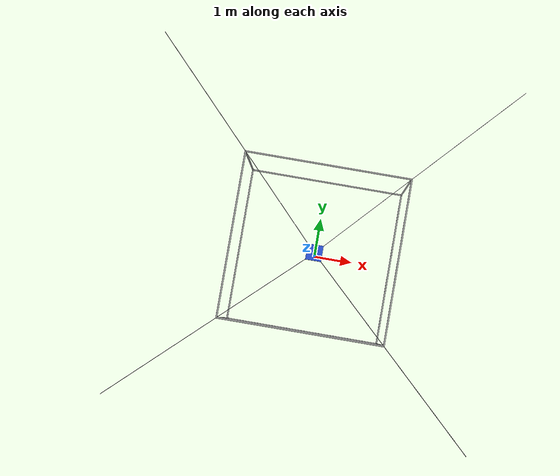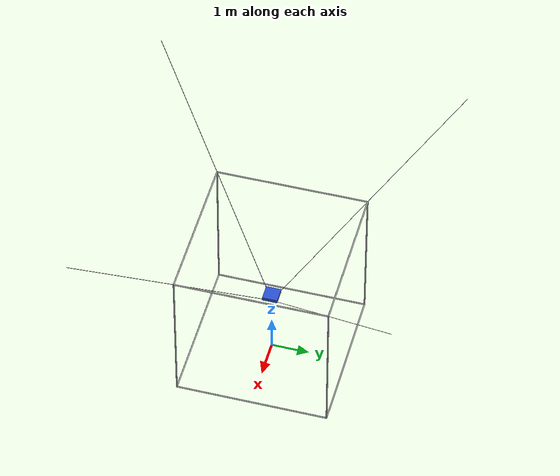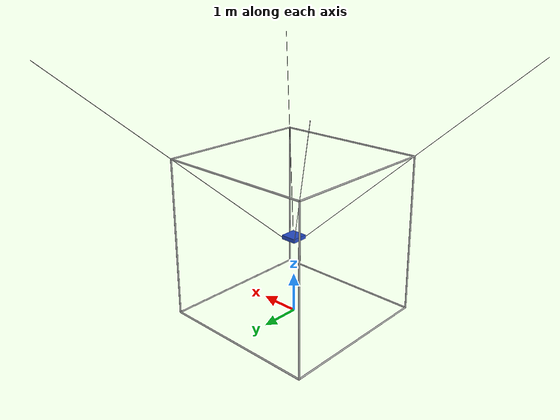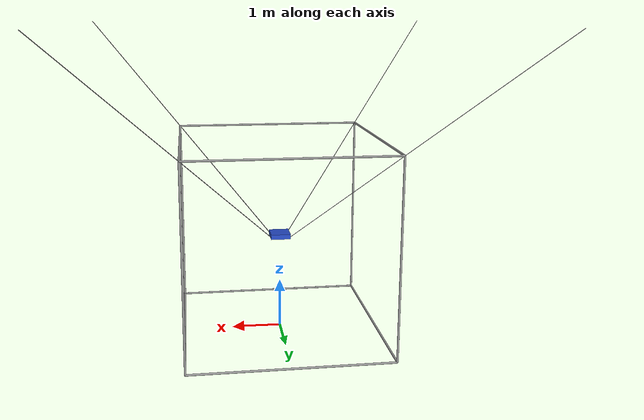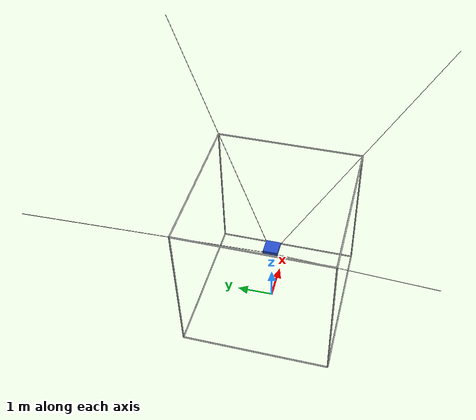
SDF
<sdf version='1.7'>
  <model name='cube'>
    <link name='frame'>
      <pose>0 0 0 0 -0 0</pose>
      <inertial>
        <inertia>
          <ixx>100000</ixx>
          <iyy>100000</iyy>
          <izz>100000</izz>
          <ixy>0</ixy>
          <ixz>0</ixz>
          <iyz>0</iyz>
        </inertia>
        <mass>100000</mass>
      </inertial>
      <visual name='visual1'>
        <geometry>
          <cylinder>
            <radius>0.02</radius>
            <length>4</length>
          </cylinder>
        </geometry>
        <pose>-2 -2 2 0 -0 0</pose>
        <material>
          <script>
            <uri>file://media/materials/scripts/gazebo.material</uri>
            <name>Gazebo/Grey</name>
          </script>
        </material>
      </visual>
      <collision name='collision1'>
        <geometry>
          <cylinder>
            <radius>0.02</radius>
            <length>1</length>
          </cylinder>
        </geometry>
        <pose>-2 -2 2 0 -0 0</pose>
      </collision>
      <visual name='visual2'>
        <geometry>
          <cylinder>
            <radius>0.02</radius>
            <length>4</length>
          </cylinder>
        </geometry>
        <pose>-2 0 0 1.5708 -0 0</pose>
        <material>
          <script>
            <uri>file://media/materials/scripts/gazebo.material</uri>
            <name>Gazebo/Grey</name>
          </script>
        </material>
      </visual>
      <collision name='collision2'>
        <geometry>
          <cylinder>
            <radius>0.02</radius>
            <length>1</length>
          </cylinder>
        </geometry>
        <pose>-2 0 0 1.5708 -0 0</pose>
      </collision>
      <visual name='visual3'>
        <geometry>
          <cylinder>
            <radius>0.02</radius>
            <length>4</length>
          </cylinder>
        </geometry>
        <pose>0 -2 0 0 1.5708 0</pose>
        <material>
          <script>
            <uri>file://media/materials/scripts/gazebo.material</uri>
            <name>Gazebo/Grey</name>
          </script>
        </material>
      </visual>
      <collision name='collision3'>
        <geometry>
          <cylinder>
            <radius>0.02</radius>
            <length>1</length>
          </cylinder>
        </geometry>
        <pose>0 -2 0 0 1.5708 0</pose>
      </collision>
      <visual name='visual4'>
        <geometry>
          <cylinder>
            <radius>0.02</radius>
            <length>4</length>
          </cylinder>
        </geometry>
        <pose>-2 0 4 1.5708 -0 0</pose>
        <material>
          <script>
            <uri>file://media/materials/scripts/gazebo.material</uri>
            <name>Gazebo/Grey</name>
          </script>
        </material>
      </visual>
      <collision name='collision4'>
        <geometry>
          <cylinder>
            <radius>0.02</radius>
            <length>1</length>
          </cylinder>
        </geometry>
        <pose>-2 0 4 1.5708 -0 0</pose>
      </collision>
      <visual name='visual5'>
        <geometry>
          <cylinder>
            <radius>0.02</radius>
            <length>4</length>
          </cylinder>
        </geometry>
        <pose>0 -2 4 0 1.5708 0</pose>
        <material>
          <script>
            <uri>file://media/materials/scripts/gazebo.material</uri>
            <name>Gazebo/Grey</name>
          </script>
        </material>
      </visual>
      <collision name='collision5'>
        <geometry>
          <cylinder>
            <radius>0.02</radius>
            <length>1</length>
          </cylinder>
        </geometry>
        <pose>0 -2 4 0 1.5708 0</pose>
      </collision>
      <visual name='visual6'>
        <geometry>
          <cylinder>
            <radius>0.02</radius>
            <length>4</length>
          </cylinder>
        </geometry>
        <pose>-2 2 2 0 -0 0</pose>
        <material>
          <script>
            <uri>file://media/materials/scripts/gazebo.material</uri>
            <name>Gazebo/Grey</name>
          </script>
        </material>
      </visual>
      <collision name='collision6'>
        <geometry>
          <cylinder>
            <radius>0.02</radius>
            <length>1</length>
          </cylinder>
        </geometry>
        <pose>-2 2 2 0 -0 0</pose>
      </collision>
      <visual name='visual7'>
        <geometry>
          <cylinder>
            <radius>0.02</radius>
            <length>4</length>
          </cylinder>
        </geometry>
        <pose>0 2 0 0 1.5708 0</pose>
        <material>
          <script>
            <uri>file://media/materials/scripts/gazebo.material</uri>
            <name>Gazebo/Grey</name>
          </script>
        </material>
      </visual>
      <collision name='collision7'>
        <geometry>
          <cylinder>
            <radius>0.02</radius>
            <length>1</length>
          </cylinder>
        </geometry>
        <pose>0 2 0 0 1.5708 0</pose>
      </collision>
      <visual name='visual8'>
        <geometry>
          <cylinder>
            <radius>0.02</radius>
            <length>4</length>
          </cylinder>
        </geometry>
        <pose>0 2 4 0 1.5708 0</pose>
        <material>
          <script>
            <uri>file://media/materials/scripts/gazebo.material</uri>
            <name>Gazebo/Grey</name>
          </script>
        </material>
      </visual>
      <collision name='collision8'>
        <geometry>
          <cylinder>
            <radius>0.02</radius>
            <length>1</length>
          </cylinder>
        </geometry>
        <pose>0 2 4 0 1.5708 0</pose>
      </collision>
      <visual name='visual9'>
        <geometry>
          <cylinder>
            <radius>0.02</radius>
            <length>4</length>
          </cylinder>
        </geometry>
        <pose>2 -2 2 0 -0 0</pose>
        <material>
          <script>
            <uri>file://media/materials/scripts/gazebo.material</uri>
            <name>Gazebo/Grey</name>
          </script>
        </material>
      </visual>
      <collision name='collision9'>
        <geometry>
          <cylinder>
            <radius>0.02</radius>
            <length>1</length>
          </cylinder>
        </geometry>
        <pose>2 -2 2 0 -0 0</pose>
      </collision>
      <visual name='visual10'>
        <geometry>
          <cylinder>
            <radius>0.02</radius>
            <length>4</length>
          </cylinder>
        </geometry>
        <pose>2 0 0 1.5708 -0 0</pose>
        <material>
          <script>
            <uri>file://media/materials/scripts/gazebo.material</uri>
            <name>Gazebo/Grey</name>
          </script>
        </material>
      </visual>
      <collision name='collision10'>
        <geometry>
          <cylinder>
            <radius>0.02</radius>
            <length>1</length>
          </cylinder>
        </geometry>
        <pose>2 0 0 1.5708 -0 0</pose>
      </collision>
      <visual name='visual11'>
        <geometry>
          <cylinder>
            <radius>0.02</radius>
            <length>4</length>
          </cylinder>
        </geometry>
        <pose>2 0 4 1.5708 -0 0</pose>
        <material>
          <script>
            <uri>file://media/materials/scripts/gazebo.material</uri>
            <name>Gazebo/Grey</name>
          </script>
        </material>
      </visual>
      <collision name='collision11'>
        <geometry>
          <cylinder>
            <radius>0.02</radius>
            <length>1</length>
          </cylinder>
        </geometry>
        <pose>2 0 4 1.5708 -0 0</pose>
      </collision>
      <visual name='visual12'>
        <geometry>
          <cylinder>
            <radius>0.02</radius>
            <length>4</length>
          </cylinder>
        </geometry>
        <pose>2 2 2 0 -0 0</pose>
        <material>
          <script>
            <uri>file://media/materials/scripts/gazebo.material</uri>
            <name>Gazebo/Grey</name>
          </script>
        </material>
      </visual>
      <collision name='collision12'>
        <geometry>
          <cylinder>
            <radius>0.02</radius>
            <length>1</length>
          </cylinder>
        </geometry>
        <pose>2 2 2 0 -0 0</pose>
      </collision>
    </link>
    <link name='platform'>
      <pose>0 0 2 0 -0 0</pose>
      <visual name='visualpf'>
        <geometry>
          <box>
            <size>0.4 0.4 0.1</size>
          </box>
        </geometry>
        <material>
          <script>
            <uri>file://media/materials/scripts/gazebo.material</uri>
            <name>Gazebo/Blue</name>
          </script>
        </material>
      </visual>
      <collision name='collisionpf'>
        <geometry>
          <box>
            <size>0.4 0.4 0.1</size>
          </box>
        </geometry>
      </collision>
      <inertial>
        <inertia>
          <ixx>0.057</ixx>
          <iyy>0.057</iyy>
          <izz>0.107</izz>
          <ixy>0</ixy>
          <ixz>0</ixz>
          <iyz>0</iyz>
        </inertia>
        <mass>4</mass>
      </inertial>
    </link>
    <link name='cable0'>
      <pose>-2.12612 -2.12612 4.14013 -2.40878 0.589592 -1.33881</pose>
      <visual name='visual'>
        <geometry>
          <cylinder>
            <radius>0.005</radius>
            <length>6.9282</length>
          </cylinder>
        </geometry>
        <material>
          <script>
            <uri>file://media/materials/scripts/gazebo.material</uri>
            <name>Gazebo/Black</name>
          </script>
        </material>
      </visual>
      <inertial>
        <inertia>
          <ixx>0.001</ixx>
          <iyy>0.001</iyy>
          <izz>0.001</izz>
          <ixy>0</ixy>
          <ixz>0</ixz>
          <iyz>0</iyz>
        </inertia>
        <mass>0.001</mass>
      </inertial>
    </link>
    <link name='virt_X0'>
      <inertial>
        <inertia>
          <ixx>0.001</ixx>
          <iyy>0.001</iyy>
          <izz>0.001</izz>
          <ixy>0</ixy>
          <ixz>0</ixz>
          <iyz>0</iyz>
        </inertia>
        <mass>0.001</mass>
      </inertial>
      <pose>-2 -2 4 -2.40878 0.589592 -1.33881</pose>
    </link>
    <joint name='rev_X0' type='revolute'>
      <pose>0 0 0 -2.40878 0.589592 -1.33881</pose>
      <parent>frame</parent>
      <child>virt_X0</child>
      <axis>
        <xyz expressed_in='__model__'>0.191099 -0.808901 -0.556022</xyz>
        <limit>
          <effort>100</effort>
          <velocity>10</velocity>
          <lower>-1e+16</lower>
          <upper>1e+16</upper>
        </limit>
        <dynamics>
          <damping>0.01</damping>
          <spring_reference>0</spring_reference>
          <spring_stiffness>0</spring_stiffness>
        </dynamics>
      </axis>
    </joint>
    <link name='virt_Y0'>
      <inertial>
        <inertia>
          <ixx>0.001</ixx>
          <iyy>0.001</iyy>
          <izz>0.001</izz>
          <ixy>0</ixy>
          <ixz>0</ixz>
          <iyz>0</iyz>
        </inertia>
        <mass>0.001</mass>
      </inertial>
      <pose>-2 -2 4 -2.40878 0.589592 -1.33881</pose>
    </link>
    <joint name='rev_Y0' type='revolute'>
      <pose>0 0 0 -2.40878 0.589592 -1.33881</pose>
      <parent>virt_X0</parent>
      <child>virt_Y0</child>
      <axis>
        <xyz expressed_in='__model__'>-0.808901 0.191099 -0.556022</xyz>
        <limit>
          <effort>100</effort>
          <velocity>10</velocity>
          <lower>-1e+16</lower>
          <upper>1e+16</upper>
        </limit>
        <dynamics>
          <damping>0.01</damping>
          <spring_reference>0</spring_reference>
          <spring_stiffness>0</spring_stiffness>
        </dynamics>
      </axis>
    </joint>
    <joint name='cable0_joint' type='prismatic'>
      <pose>0 0 0.242711 -2.40878 0.589592 -1.33881</pose>
      <parent>virt_Y0</parent>
      <child>cable0</child>
      <axis>
        <xyz expressed_in='__model__'>-0.556022 -0.556022 0.617802</xyz>
        <limit>
          <lower>-3.4641</lower>
          <upper>3.4641</upper>
          <effort>100</effort>
          <velocity>10</velocity>
        </limit>
        <dynamics>
          <damping>1</damping>
          <spring_reference>0</spring_reference>
          <spring_stiffness>0</spring_stiffness>
        </dynamics>
      </axis>
    </joint>
    <link name='virt_Xpf0'>
      <inertial>
        <inertia>
          <ixx>0.001</ixx>
          <iyy>0.001</iyy>
          <izz>0.001</izz>
          <ixy>0</ixy>
          <ixz>0</ixz>
          <iyz>0</iyz>
        </inertia>
        <mass>0.001</mass>
      </inertial>
      <pose>-0.2 -0.2 2 -2.40878 0.589592 -1.33881</pose>
    </link>
    <joint name='rev_Xpf0' type='revolute'>
      <pose>0 0 0 -2.40878 0.589592 -1.33881</pose>
      <parent>cable0</parent>
      <child>virt_Xpf0</child>
      <axis>
        <xyz expressed_in='__model__'>1 0 0</xyz>
        <limit>
          <effort>100</effort>
          <velocity>10</velocity>
          <lower>-1e+16</lower>
          <upper>1e+16</upper>
        </limit>
        <dynamics>
          <damping>0.01</damping>
          <spring_reference>0</spring_reference>
          <spring_stiffness>0</spring_stiffness>
        </dynamics>
      </axis>
    </joint>
    <link name='virt_Ypf0'>
      <inertial>
        <inertia>
          <ixx>0.001</ixx>
          <iyy>0.001</iyy>
          <izz>0.001</izz>
          <ixy>0</ixy>
          <ixz>0</ixz>
          <iyz>0</iyz>
        </inertia>
        <mass>0.001</mass>
      </inertial>
      <pose>-0.2 -0.2 2 -2.40878 0.589592 -1.33881</pose>
    </link>
    <joint name='rev_Ypf0' type='revolute'>
      <pose>0 0 0 -2.40878 0.589592 -1.33881</pose>
      <parent>virt_Xpf0</parent>
      <child>virt_Ypf0</child>
      <axis>
        <xyz expressed_in='__model__'>0 1 0</xyz>
        <limit>
          <effort>100</effort>
          <velocity>10</velocity>
          <lower>-1e+16</lower>
          <upper>1e+16</upper>
        </limit>
        <dynamics>
          <damping>0.01</damping>
          <spring_reference>0</spring_reference>
          <spring_stiffness>0</spring_stiffness>
        </dynamics>
      </axis>
    </joint>
    <joint name='rev_Zpf0' type='revolute'>
      <pose>0 0 0 -2.40878 0.589592 -1.33881</pose>
      <parent>virt_Ypf0</parent>
      <child>platform</child>
      <axis>
        <xyz expressed_in='__model__'>0 0 1</xyz>
        <limit>
          <effort>100</effort>
          <velocity>10</velocity>
          <lower>-1e+16</lower>
          <upper>1e+16</upper>
        </limit>
        <dynamics>
          <damping>0.01</damping>
          <spring_reference>0</spring_reference>
          <spring_stiffness>0</spring_stiffness>
        </dynamics>
      </axis>
    </joint>
    <link name='cable1'>
      <pose>-2.12612 2.12612 4.14013 2.40878 0.589592 1.33881</pose>
      <visual name='visual'>
        <geometry>
          <cylinder>
            <radius>0.005</radius>
            <length>6.9282</length>
          </cylinder>
        </geometry>
        <material>
          <script>
            <uri>file://media/materials/scripts/gazebo.material</uri>
            <name>Gazebo/Black</name>
          </script>
        </material>
      </visual>
      <inertial>
        <inertia>
          <ixx>0.001</ixx>
          <iyy>0.001</iyy>
          <izz>0.001</izz>
          <ixy>0</ixy>
          <ixz>0</ixz>
          <iyz>0</iyz>
        </inertia>
        <mass>0.001</mass>
      </inertial>
    </link>
    <link name='virt_X1'>
      <inertial>
        <inertia>
          <ixx>0.001</ixx>
          <iyy>0.001</iyy>
          <izz>0.001</izz>
          <ixy>0</ixy>
          <ixz>0</ixz>
          <iyz>0</iyz>
        </inertia>
        <mass>0.001</mass>
      </inertial>
      <pose>-2 2 4 2.40878 0.589592 1.33881</pose>
    </link>
    <joint name='rev_X1' type='revolute'>
      <pose>0 0 0 2.40878 0.589592 1.33881</pose>
      <parent>frame</parent>
      <child>virt_X1</child>
      <axis>
        <xyz expressed_in='__model__'>0.191099 0.808901 -0.556022</xyz>
        <limit>
          <effort>100</effort>
          <velocity>10</velocity>
          <lower>-1e+16</lower>
          <upper>1e+16</upper>
        </limit>
        <dynamics>
          <damping>0.01</damping>
          <spring_reference>0</spring_reference>
          <spring_stiffness>0</spring_stiffness>
        </dynamics>
      </axis>
    </joint>
    <link name='virt_Y1'>
      <inertial>
        <inertia>
          <ixx>0.001</ixx>
          <iyy>0.001</iyy>
          <izz>0.001</izz>
          <ixy>0</ixy>
          <ixz>0</ixz>
          <iyz>0</iyz>
        </inertia>
        <mass>0.001</mass>
      </inertial>
      <pose>-2 2 4 2.40878 0.589592 1.33881</pose>
    </link>
    <joint name='rev_Y1' type='revolute'>
      <pose>0 0 0 2.40878 0.589592 1.33881</pose>
      <parent>virt_X1</parent>
      <child>virt_Y1</child>
      <axis>
        <xyz expressed_in='__model__'>0.808901 0.191099 0.556022</xyz>
        <limit>
          <effort>100</effort>
          <velocity>10</velocity>
          <lower>-1e+16</lower>
          <upper>1e+16</upper>
        </limit>
        <dynamics>
          <damping>0.01</damping>
          <spring_reference>0</spring_reference>
          <spring_stiffness>0</spring_stiffness>
        </dynamics>
      </axis>
    </joint>
    <joint name='cable1_joint' type='prismatic'>
      <pose>0 0 0.242711 2.40878 0.589592 1.33881</pose>
      <parent>virt_Y1</parent>
      <child>cable1</child>
      <axis>
        <xyz expressed_in='__model__'>-0.556022 0.556022 0.617802</xyz>
        <limit>
          <lower>-3.4641</lower>
          <upper>3.4641</upper>
          <effort>100</effort>
          <velocity>10</velocity>
        </limit>
        <dynamics>
          <damping>1</damping>
          <spring_reference>0</spring_reference>
          <spring_stiffness>0</spring_stiffness>
        </dynamics>
      </axis>
    </joint>
    <link name='virt_Xpf1'>
      <inertial>
        <inertia>
          <ixx>0.001</ixx>
          <iyy>0.001</iyy>
          <izz>0.001</izz>
          <ixy>0</ixy>
          <ixz>0</ixz>
          <iyz>0</iyz>
        </inertia>
        <mass>0.001</mass>
      </inertial>
      <pose>-0.2 0.2 2 2.40878 0.589592 1.33881</pose>
    </link>
    <joint name='rev_Xpf1' type='revolute'>
      <pose>0 0 0 2.40878 0.589592 1.33881</pose>
      <parent>cable1</parent>
      <child>virt_Xpf1</child>
      <axis>
        <xyz expressed_in='__model__'>1 0 0</xyz>
        <limit>
          <effort>100</effort>
          <velocity>10</velocity>
          <lower>-1e+16</lower>
          <upper>1e+16</upper>
        </limit>
        <dynamics>
          <damping>0.01</damping>
          <spring_reference>0</spring_reference>
          <spring_stiffness>0</spring_stiffness>
        </dynamics>
      </axis>
    </joint>
    <link name='virt_Ypf1'>
      <inertial>
        <inertia>
          <ixx>0.001</ixx>
          <iyy>0.001</iyy>
          <izz>0.001</izz>
          <ixy>0</ixy>
          <ixz>0</ixz>
          <iyz>0</iyz>
        </inertia>
        <mass>0.001</mass>
      </inertial>
      <pose>-0.2 0.2 2 2.40878 0.589592 1.33881</pose>
    </link>
    <joint name='rev_Ypf1' type='revolute'>
      <pose>0 0 0 2.40878 0.589592 1.33881</pose>
      <parent>virt_Xpf1</parent>
      <child>virt_Ypf1</child>
      <axis>
        <xyz expressed_in='__model__'>0 1 0</xyz>
        <limit>
          <effort>100</effort>
          <velocity>10</velocity>
          <lower>-1e+16</lower>
          <upper>1e+16</upper>
        </limit>
        <dynamics>
          <damping>0.01</damping>
          <spring_reference>0</spring_reference>
          <spring_stiffness>0</spring_stiffness>
        </dynamics>
      </axis>
    </joint>
    <joint name='rev_Zpf1' type='revolute'>
      <pose>0 0 0 2.40878 0.589592 1.33881</pose>
      <parent>virt_Ypf1</parent>
      <child>platform</child>
      <axis>
        <xyz expressed_in='__model__'>0 0 1</xyz>
        <limit>
          <effort>100</effort>
          <velocity>10</velocity>
          <lower>-1e+16</lower>
          <upper>1e+16</upper>
        </limit>
        <dynamics>
          <damping>0.01</damping>
          <spring_reference>0</spring_reference>
          <spring_stiffness>0</spring_stiffness>
        </dynamics>
      </axis>
    </joint>
    <link name='cable2'>
      <pose>2.12612 2.12612 4.14013 2.40878 -0.589592 -1.33881</pose>
      <visual name='visual'>
        <geometry>
          <cylinder>
            <radius>0.005</radius>
            <length>6.9282</length>
          </cylinder>
        </geometry>
        <material>
          <script>
            <uri>file://media/materials/scripts/gazebo.material</uri>
            <name>Gazebo/Black</name>
          </script>
        </material>
      </visual>
      <inertial>
        <inertia>
          <ixx>0.001</ixx>
          <iyy>0.001</iyy>
          <izz>0.001</izz>
          <ixy>0</ixy>
          <ixz>0</ixz>
          <iyz>0</iyz>
        </inertia>
        <mass>0.001</mass>
      </inertial>
    </link>
    <link name='virt_X2'>
      <inertial>
        <inertia>
          <ixx>0.001</ixx>
          <iyy>0.001</iyy>
          <izz>0.001</izz>
          <ixy>0</ixy>
          <ixz>0</ixz>
          <iyz>0</iyz>
        </inertia>
        <mass>0.001</mass>
      </inertial>
      <pose>2 2 4 2.40878 -0.589592 -1.33881</pose>
    </link>
    <joint name='rev_X2' type='revolute'>
      <pose>0 0 0 2.40878 -0.589592 -1.33881</pose>
      <parent>frame</parent>
      <child>virt_X2</child>
      <axis>
        <xyz expressed_in='__model__'>0.191099 -0.808901 0.556022</xyz>
        <limit>
          <effort>100</effort>
          <velocity>10</velocity>
          <lower>-1e+16</lower>
          <upper>1e+16</upper>
        </limit>
        <dynamics>
          <damping>0.01</damping>
          <spring_reference>0</spring_reference>
          <spring_stiffness>0</spring_stiffness>
        </dynamics>
      </axis>
    </joint>
    <link name='virt_Y2'>
      <inertial>
        <inertia>
          <ixx>0.001</ixx>
          <iyy>0.001</iyy>
          <izz>0.001</izz>
          <ixy>0</ixy>
          <ixz>0</ixz>
          <iyz>0</iyz>
        </inertia>
        <mass>0.001</mass>
      </inertial>
      <pose>2 2 4 2.40878 -0.589592 -1.33881</pose>
    </link>
    <joint name='rev_Y2' type='revolute'>
      <pose>0 0 0 2.40878 -0.589592 -1.33881</pose>
      <parent>virt_X2</parent>
      <child>virt_Y2</child>
      <axis>
        <xyz expressed_in='__model__'>-0.808901 0.191099 0.556022</xyz>
        <limit>
          <effort>100</effort>
          <velocity>10</velocity>
          <lower>-1e+16</lower>
          <upper>1e+16</upper>
        </limit>
        <dynamics>
          <damping>0.01</damping>
          <spring_reference>0</spring_reference>
          <spring_stiffness>0</spring_stiffness>
        </dynamics>
      </axis>
    </joint>
    <joint name='cable2_joint' type='prismatic'>
      <pose>0 0 0.242711 2.40878 -0.589592 -1.33881</pose>
      <parent>virt_Y2</parent>
      <child>cable2</child>
      <axis>
        <xyz expressed_in='__model__'>0.556022 0.556022 0.617802</xyz>
        <limit>
          <lower>-3.4641</lower>
          <upper>3.4641</upper>
          <effort>100</effort>
          <velocity>10</velocity>
        </limit>
        <dynamics>
          <damping>1</damping>
          <spring_reference>0</spring_reference>
          <spring_stiffness>0</spring_stiffness>
        </dynamics>
      </axis>
    </joint>
    <link name='virt_Xpf2'>
      <inertial>
        <inertia>
          <ixx>0.001</ixx>
          <iyy>0.001</iyy>
          <izz>0.001</izz>
          <ixy>0</ixy>
          <ixz>0</ixz>
          <iyz>0</iyz>
        </inertia>
        <mass>0.001</mass>
      </inertial>
      <pose>0.2 0.2 2 2.40878 -0.589592 -1.33881</pose>
    </link>
    <joint name='rev_Xpf2' type='revolute'>
      <pose>0 0 0 2.40878 -0.589592 -1.33881</pose>
      <parent>cable2</parent>
      <child>virt_Xpf2</child>
      <axis>
        <xyz expressed_in='__model__'>1 0 0</xyz>
        <limit>
          <effort>100</effort>
          <velocity>10</velocity>
          <lower>-1e+16</lower>
          <upper>1e+16</upper>
        </limit>
        <dynamics>
          <damping>0.01</damping>
          <spring_reference>0</spring_reference>
          <spring_stiffness>0</spring_stiffness>
        </dynamics>
      </axis>
    </joint>
    <link name='virt_Ypf2'>
      <inertial>
        <inertia>
          <ixx>0.001</ixx>
          <iyy>0.001</iyy>
          <izz>0.001</izz>
          <ixy>0</ixy>
          <ixz>0</ixz>
          <iyz>0</iyz>
        </inertia>
        <mass>0.001</mass>
      </inertial>
      <pose>0.2 0.2 2 2.40878 -0.589592 -1.33881</pose>
    </link>
    <joint name='rev_Ypf2' type='revolute'>
      <pose>0 0 0 2.40878 -0.589592 -1.33881</pose>
      <parent>virt_Xpf2</parent>
      <child>virt_Ypf2</child>
      <axis>
        <xyz expressed_in='__model__'>0 1 0</xyz>
        <limit>
          <effort>100</effort>
          <velocity>10</velocity>
          <lower>-1e+16</lower>
          <upper>1e+16</upper>
        </limit>
        <dynamics>
          <damping>0.01</damping>
          <spring_reference>0</spring_reference>
          <spring_stiffness>0</spring_stiffness>
        </dynamics>
      </axis>
    </joint>
    <joint name='rev_Zpf2' type='revolute'>
      <pose>0 0 0 2.40878 -0.589592 -1.33881</pose>
      <parent>virt_Ypf2</parent>
      <child>platform</child>
      <axis>
        <xyz expressed_in='__model__'>0 0 1</xyz>
        <limit>
          <effort>100</effort>
          <velocity>10</velocity>
          <lower>-1e+16</lower>
          <upper>1e+16</upper>
        </limit>
        <dynamics>
          <damping>0.01</damping>
          <spring_reference>0</spring_reference>
          <spring_stiffness>0</spring_stiffness>
        </dynamics>
      </axis>
    </joint>
    <link name='cable3'>
      <pose>2.12612 -2.12612 4.14013 -2.40878 -0.589592 1.33881</pose>
      <visual name='visual'>
        <geometry>
          <cylinder>
            <radius>0.005</radius>
            <length>6.9282</length>
          </cylinder>
        </geometry>
        <material>
          <script>
            <uri>file://media/materials/scripts/gazebo.material</uri>
            <name>Gazebo/Black</name>
          </script>
        </material>
      </visual>
      <inertial>
        <inertia>
          <ixx>0.001</ixx>
          <iyy>0.001</iyy>
          <izz>0.001</izz>
          <ixy>0</ixy>
          <ixz>0</ixz>
          <iyz>0</iyz>
        </inertia>
        <mass>0.001</mass>
      </inertial>
    </link>
    <link name='virt_X3'>
      <inertial>
        <inertia>
          <ixx>0.001</ixx>
          <iyy>0.001</iyy>
          <izz>0.001</izz>
          <ixy>0</ixy>
          <ixz>0</ixz>
          <iyz>0</iyz>
        </inertia>
        <mass>0.001</mass>
      </inertial>
      <pose>2 -2 4 -2.40878 -0.589592 1.33881</pose>
    </link>
    <joint name='rev_X3' type='revolute'>
      <pose>0 0 0 -2.40878 -0.589592 1.33881</pose>
      <parent>frame</parent>
      <child>virt_X3</child>
      <axis>
        <xyz expressed_in='__model__'>0.191099 0.808901 0.556022</xyz>
        <limit>
          <effort>100</effort>
          <velocity>10</velocity>
          <lower>-1e+16</lower>
          <upper>1e+16</upper>
        </limit>
        <dynamics>
          <damping>0.01</damping>
          <spring_reference>0</spring_reference>
          <spring_stiffness>0</spring_stiffness>
        </dynamics>
      </axis>
    </joint>
    <link name='virt_Y3'>
      <inertial>
        <inertia>
          <ixx>0.001</ixx>
          <iyy>0.001</iyy>
          <izz>0.001</izz>
          <ixy>0</ixy>
          <ixz>0</ixz>
          <iyz>0</iyz>
        </inertia>
        <mass>0.001</mass>
      </inertial>
      <pose>2 -2 4 -2.40878 -0.589592 1.33881</pose>
    </link>
    <joint name='rev_Y3' type='revolute'>
      <pose>0 0 0 -2.40878 -0.589592 1.33881</pose>
      <parent>virt_X3</parent>
      <child>virt_Y3</child>
      <axis>
        <xyz expressed_in='__model__'>0.808901 0.191099 -0.556022</xyz>
        <limit>
          <effort>100</effort>
          <velocity>10</velocity>
          <lower>-1e+16</lower>
          <upper>1e+16</upper>
        </limit>
        <dynamics>
          <damping>0.01</damping>
          <spring_reference>0</spring_reference>
          <spring_stiffness>0</spring_stiffness>
        </dynamics>
      </axis>
    </joint>
    <joint name='cable3_joint' type='prismatic'>
      <pose>0 0 0.242711 -2.40878 -0.589592 1.33881</pose>
      <parent>virt_Y3</parent>
      <child>cable3</child>
      <axis>
        <xyz expressed_in='__model__'>0.556022 -0.556022 0.617802</xyz>
        <limit>
          <lower>-3.4641</lower>
          <upper>3.4641</upper>
          <effort>100</effort>
          <velocity>10</velocity>
        </limit>
        <dynamics>
          <damping>1</damping>
          <spring_reference>0</spring_reference>
          <spring_stiffness>0</spring_stiffness>
        </dynamics>
      </axis>
    </joint>
    <link name='virt_Xpf3'>
      <inertial>
        <inertia>
          <ixx>0.001</ixx>
          <iyy>0.001</iyy>
          <izz>0.001</izz>
          <ixy>0</ixy>
          <ixz>0</ixz>
          <iyz>0</iyz>
        </inertia>
        <mass>0.001</mass>
      </inertial>
      <pose>0.2 -0.2 2 -2.40878 -0.589592 1.33881</pose>
    </link>
    <joint name='rev_Xpf3' type='revolute'>
      <pose>0 0 0 -2.40878 -0.589592 1.33881</pose>
      <parent>cable3</parent>
      <child>virt_Xpf3</child>
      <axis>
        <xyz expressed_in='__model__'>1 0 0</xyz>
        <limit>
          <effort>100</effort>
          <velocity>10</velocity>
          <lower>-1e+16</lower>
          <upper>1e+16</upper>
        </limit>
        <dynamics>
          <damping>0.01</damping>
          <spring_reference>0</spring_reference>
          <spring_stiffness>0</spring_stiffness>
        </dynamics>
      </axis>
    </joint>
    <link name='virt_Ypf3'>
      <inertial>
        <inertia>
          <ixx>0.001</ixx>
          <iyy>0.001</iyy>
          <izz>0.001</izz>
          <ixy>0</ixy>
          <ixz>0</ixz>
          <iyz>0</iyz>
        </inertia>
        <mass>0.001</mass>
      </inertial>
      <pose>0.2 -0.2 2 -2.40878 -0.589592 1.33881</pose>
    </link>
    <joint name='rev_Ypf3' type='revolute'>
      <pose>0 0 0 -2.40878 -0.589592 1.33881</pose>
      <parent>virt_Xpf3</parent>
      <child>virt_Ypf3</child>
      <axis>
        <xyz expressed_in='__model__'>0 1 0</xyz>
        <limit>
          <effort>100</effort>
          <velocity>10</velocity>
          <lower>-1e+16</lower>
          <upper>1e+16</upper>
        </limit>
        <dynamics>
          <damping>0.01</damping>
          <spring_reference>0</spring_reference>
          <spring_stiffness>0</spring_stiffness>
        </dynamics>
      </axis>
    </joint>
    <joint name='rev_Zpf3' type='revolute'>
      <pose>0 0 0 -2.40878 -0.589592 1.33881</pose>
      <parent>virt_Ypf3</parent>
      <child>platform</child>
      <axis>
        <xyz expressed_in='__model__'>0 0 1</xyz>
        <limit>
          <effort>100</effort>
          <velocity>10</velocity>
          <lower>-1e+16</lower>
          <upper>1e+16</upper>
        </limit>
        <dynamics>
          <damping>0.01</damping>
          <spring_reference>0</spring_reference>
          <spring_stiffness>0</spring_stiffness>
        </dynamics>
      </axis>
    </joint>
    <plugin name='cdpr_plugin' filename='libcdpr_plugin.so'>
      <ros>
        <namespace>/cable_robot</namespace>
      </ros>
    </plugin>
  </model>
</sdf>
